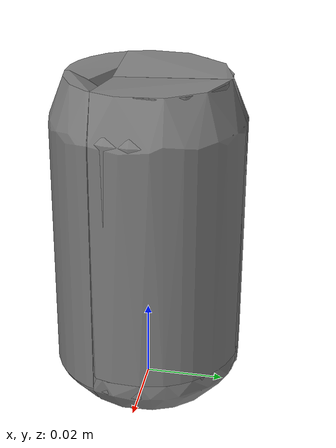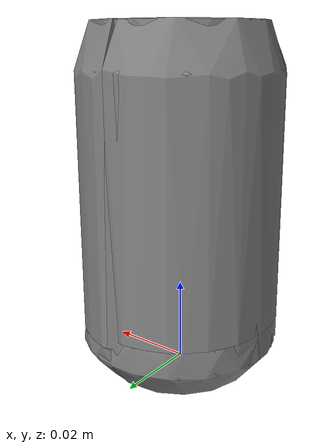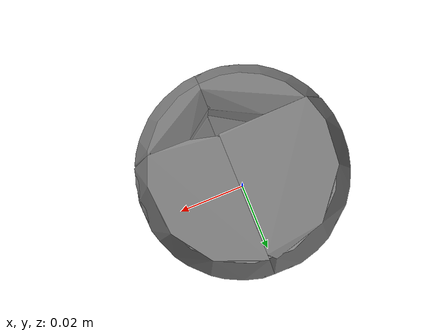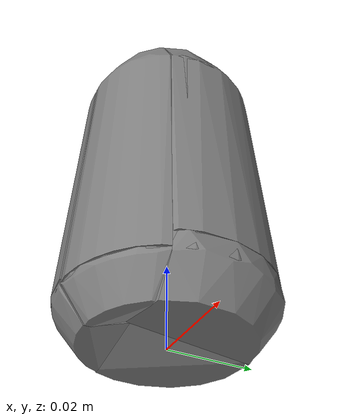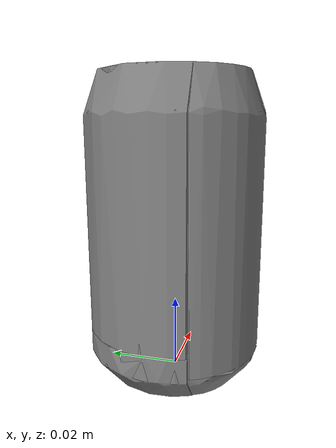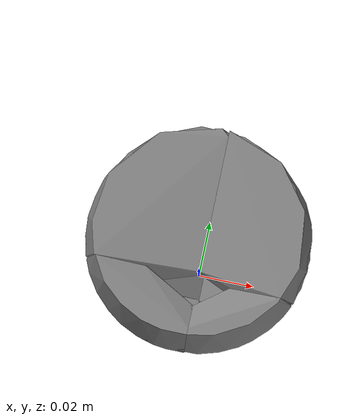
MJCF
<mujoco model="soda_can">
  <asset>
    <mesh file="../../meshes/train/soda_can/simple_mesh.stl" name="soda_can_mesh" scale="0.6 0.6 0.6"/>
    <mesh file="../../meshes/train/soda_can/soda_can_hull_1.stl" name="soda_can_hull_mesh_1" scale="0.6 0.6 0.6"/>
    <mesh file="../../meshes/train/soda_can/soda_can_hull_2.stl" name="soda_can_hull_mesh_2" scale="0.6 0.6 0.6"/>
    <mesh file="../../meshes/train/soda_can/soda_can_hull_3.stl" name="soda_can_hull_mesh_3" scale="0.6 0.6 0.6"/>
    <mesh file="../../meshes/train/soda_can/soda_can_hull_4.stl" name="soda_can_hull_mesh_4" scale="0.6 0.6 0.6"/>
    <mesh file="../../meshes/train/soda_can/soda_can_hull_5.stl" name="soda_can_hull_mesh_5" scale="0.6 0.6 0.6"/>
    <mesh file="../../meshes/train/soda_can/soda_can_hull_6.stl" name="soda_can_hull_mesh_6" scale="0.6 0.6 0.6"/>
    <mesh file="../../meshes/train/soda_can/soda_can_hull_7.stl" name="soda_can_hull_mesh_7" scale="0.6 0.6 0.6"/>
    <mesh file="../../meshes/train/soda_can/soda_can_hull_8.stl" name="soda_can_hull_mesh_8" scale="0.6 0.6 0.6"/>
  </asset>
  <worldbody>
    <body>
      <body name="object">
        <geom pos="0 0 0" mesh="soda_can_mesh" type="mesh" contype="0" conaffinity="0" group="1"/>
        <geom pos="0 0 0" mesh="soda_can_hull_mesh_1" type="mesh" margin="0.001" solimp="0.998 0.998 0.001" solref="0.001 1" density="2000" friction="0.95 0.3 0.1" group="0" condim="4"/>
        <geom pos="0 0 0" mesh="soda_can_hull_mesh_2" type="mesh" margin="0.001" solimp="0.998 0.998 0.001" solref="0.001 1" density="2000" friction="0.95 0.3 0.1" group="0" condim="4"/>
        <geom pos="0 0 0" mesh="soda_can_hull_mesh_3" type="mesh" margin="0.001" solimp="0.998 0.998 0.001" solref="0.001 1" density="2000" friction="0.95 0.3 0.1" group="0" condim="4"/>
        <geom pos="0 0 0" mesh="soda_can_hull_mesh_4" type="mesh" margin="0.001" solimp="0.998 0.998 0.001" solref="0.001 1" density="2000" friction="0.95 0.3 0.1" group="0" condim="4"/>
        <geom pos="0 0 0" mesh="soda_can_hull_mesh_5" type="mesh" margin="0.001" solimp="0.998 0.998 0.001" solref="0.001 1" density="2000" friction="0.95 0.3 0.1" group="0" condim="4"/>
        <geom pos="0 0 0" mesh="soda_can_hull_mesh_6" type="mesh" margin="0.001" solimp="0.998 0.998 0.001" solref="0.001 1" density="2000" friction="0.95 0.3 0.1" group="0" condim="4"/>
        <geom pos="0 0 0" mesh="soda_can_hull_mesh_7" type="mesh" margin="0.001" solimp="0.998 0.998 0.001" solref="0.001 1" density="2000" friction="0.95 0.3 0.1" group="0" condim="4"/>
        <geom pos="0 0 0" mesh="soda_can_hull_mesh_8" type="mesh" margin="0.001" solimp="0.998 0.998 0.001" solref="0.001 1" density="2000" friction="0.95 0.3 0.1" group="0" condim="4"/>
      </body>
      <site rgba="0 0 0 0" size="0.005" pos="0 0 -0.001" name="bottom_site"/>
      <site rgba="0 0 0 0" size="0.005" pos="0 0 0.02" name="top_site"/>
      <site rgba="0 0 0 0" size="0.005" pos="0.0375 0.02 0" name="horizontal_radius_site"/>
    </body>
  </worldbody>
</mujoco>
